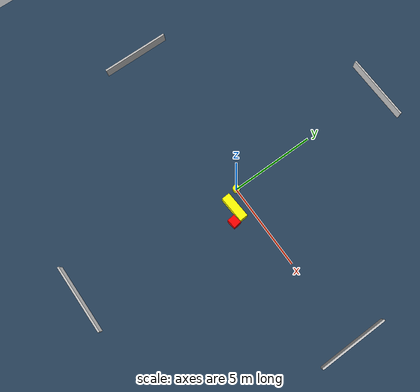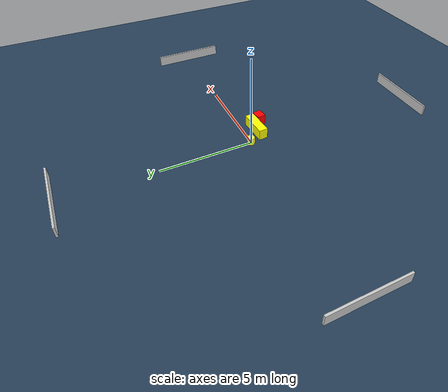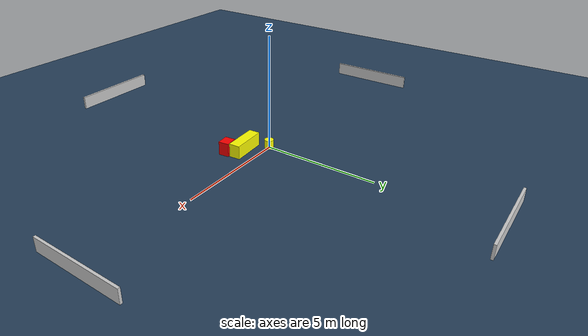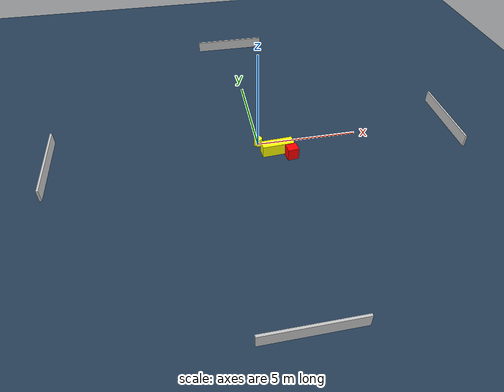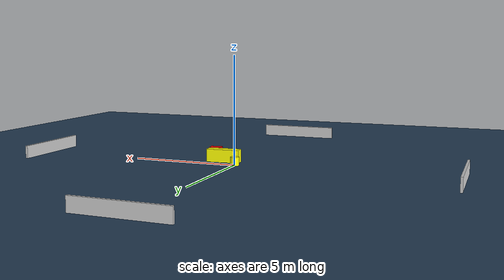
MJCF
<?xml version="1.0" ?>
<mujoco model="generated_environment">
  <option timestep="0.01" integrator="RK4" cone="elliptic"/>
  <default>
    <geom density="1"/>
  </default>
  <asset>
    <texture builtin="gradient" height="3072" name="skybox" rgb1="0.3 0.5 0.7" rgb2="0 0 0" type="skybox" width="512"/>
    <texture builtin="checker" height="300" name="groundplane" rgb1="0.2 0.3 0.4" rgb2="0.1 0.2 0.3" type="2d" width="300"/>
    <material name="groundplane" reflectance="0.2" texrepeat="5 5" texture="groundplane"/>
  </asset>
  <worldbody>
    <light dir="0 0 -1" directional="true" pos="0 0 1.5"/>
    <geom condim="3" friction="0.5 0.005 0.001" material="groundplane" name="floor" pos="0 0 0" size="0 0 0.05" type="plane"/>
    <body name="walls">
      <geom name="wall_1" condim="4" pos="-10.0 0.0 0.3" rgba="0.800000011920929 0.800000011920929 0.800000011920929 1.0" size="0.05 2.0 0.3" type="box"/>
      <geom name="wall_2" condim="4" pos="10.0 0.0 0.3" rgba="0.800000011920929 0.800000011920929 0.800000011920929 1.0" size="0.05 2.0 0.3" type="box"/>
      <geom name="wall_3" condim="4" pos="0.0 -10.0 0.3" rgba="0.800000011920929 0.800000011920929 0.800000011920929 1.0" size="2.0 0.05 0.3" type="box"/>
      <geom name="wall_4" condim="4" pos="0.0 10.0 0.3" rgba="0.800000011920929 0.800000011920929 0.800000011920929 1.0" size="2.0 0.05 0.3" type="box"/>
    </body>
    <body name="robot">
      <joint name="joint_x" type="slide" pos="0 0 0" axis="1 0 0"/>
      <joint name="joint_y" type="slide" pos="0 0 0" axis="0 1 0"/>
      <geom name="robot" type="cylinder" pos="0.0 0.0 0.2" size="0.2 0.2 0.0" mass="5.0" friction="1.0 0.005 0.0001" condim="4" rgba="1.0 1.0 0.0 1.0"/>
    </body>
    <body name="obstacle_1_movable">
      <geom name="obstacle_1_movable" condim="4" pos="0.8249569151523297 -0.7077591624367904 0.3" euler="0 0 3.513064798421661" friction="0.0 0.005 0.001" rgba="1.0 1.0 0.0 1.0" size="0.7754849776468877 0.24525535537415358 0.3" type="box" mass="0.1"/>
      <joint type="free"/>
    </body>
    <body name="obstacle_2_static">
      <geom name="obstacle_2_static" condim="4" pos="1.4376621977799289 -1.179439356072344 0.3" euler="0 0 276.6499342930116" friction="0.0 0.005 0.001" rgba="1.0 0.0 0.0 1.0" size="0.2319776876249916 0.2693402827168676 0.3" type="box"/>
    </body>
  </worldbody>
  <actuator>
    <motor name="actuator_x" joint="joint_x" gear="1" ctrlrange="-1 1"/>
    <motor name="actuator_y" joint="joint_y" gear="1" ctrlrange="-1 1"/>
  </actuator>
</mujoco>
